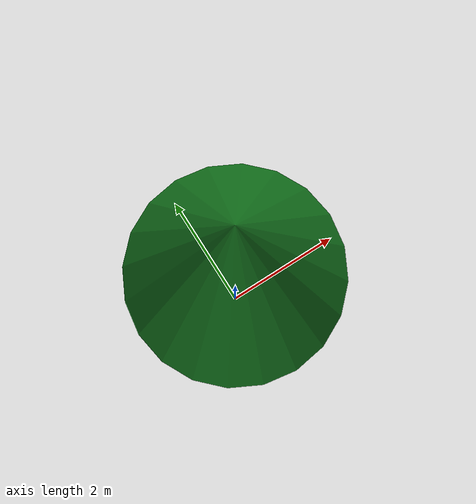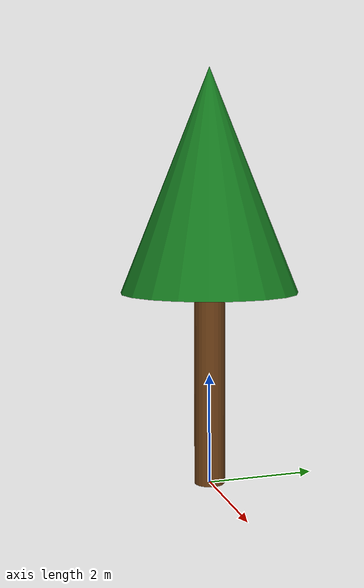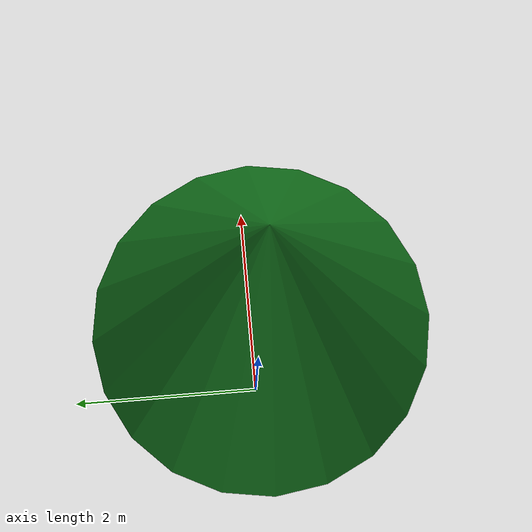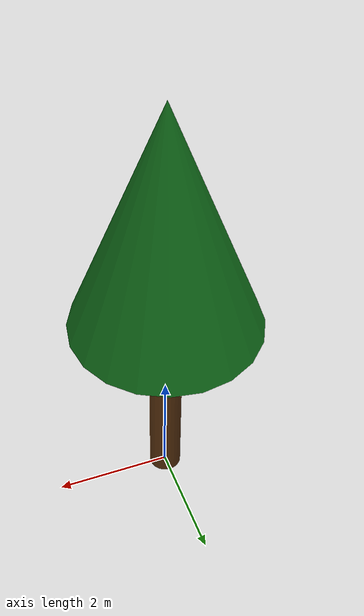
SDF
<?xml version="1.0" encoding="UTF-8"?>
<sdf version="1.9">
  <model name="map_tree">
    <static>true</static>
    <link name="tree_link">
      <collision name="trunk_collision">
        <pose>0 0 2.5 0 0 0</pose>
        <geometry>
          <cylinder>
            <radius>0.28</radius>
            <length>5.0</length>
          </cylinder>
        </geometry>
      </collision>
      <visual name="trunk_visual">
        <pose>0 0 2.5 0 0 0</pose>
        <geometry>
          <cylinder>
            <radius>0.28</radius>
            <length>5.0</length>
          </cylinder>
        </geometry>
        <material>
          <ambient>0.30 0.16 0.06 1</ambient>
          <diffuse>0.42 0.24 0.08 1</diffuse>
          <specular>0.05 0.03 0.01 1</specular>
        </material>
      </visual>

      <collision name="canopy_collision">
        <pose>0 0 5.5 0 0 0</pose>
        <geometry>
          <cone>
            <radius>1.6</radius>
            <length>4.0</length>
          </cone>
        </geometry>
      </collision>
      <visual name="canopy_visual">
        <pose>0 0 5.5 0 0 0</pose>
        <geometry>
          <cone>
            <radius>1.6</radius>
            <length>4.0</length>
          </cone>
        </geometry>
        <material>
          <ambient>0.04 0.26 0.06 1</ambient>
          <diffuse>0.08 0.48 0.12 1</diffuse>
          <specular>0.02 0.08 0.02 1</specular>
        </material>
      </visual>
    </link>
  </model>
</sdf>
